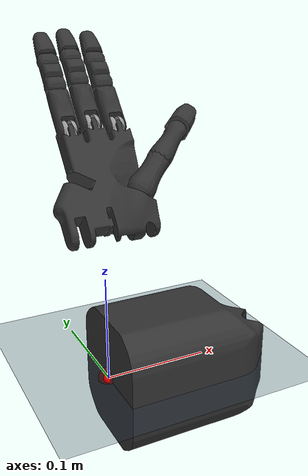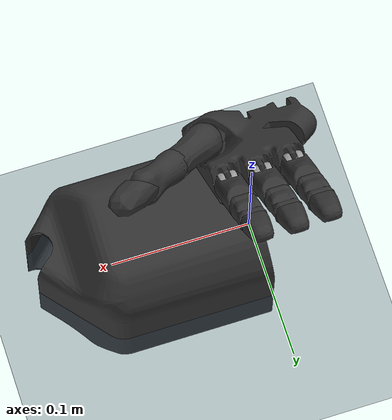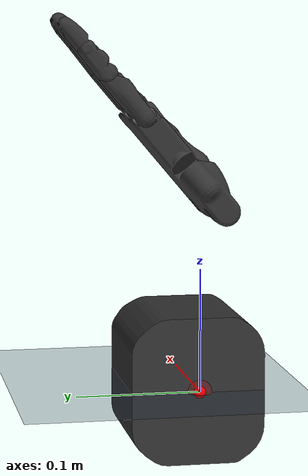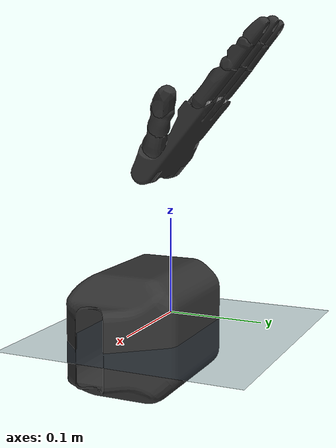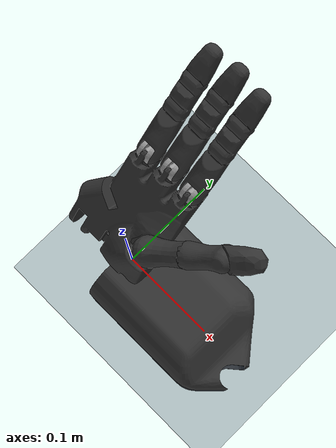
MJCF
<?xml version="1.0" encoding="utf-8"?>
<mujoco>
    <compiler angle="radian" coordinate="local" meshdir="../stls/hand" texturedir="../textures"></compiler>
    <option timestep="0.002" iterations="20" apirate="200">
        <flag warmstart="enable"></flag>
    </option>

    <include file="shared.xml"></include>

    <asset>
        <include file="shared_asset.xml"></include>
    </asset>

    <worldbody>
      <geom condim="3" material="mat_plane" name="floor" pos="0 0 0" size="5 5 0.001" type="plane" />
        <body name="floor0" pos="0 0 0">
            <site name="target0" pos="0 0 0" size="0.005" rgba="1 0 0 1" type="sphere"></site>
            <site name="target1" pos="0 0 0" size="0.005" rgba="0 1 0 1" type="sphere"></site>
            <site name="target2" pos="0 0 0" size="0.005" rgba="0 0 1 1" type="sphere"></site>
            <site name="target3" pos="0 0 0" size="0.005" rgba="1 1 0 1" type="sphere"></site>
            <site name="target4" pos="0 0 0" size="0.005" rgba="1 0 1 1" type="sphere"></site>

            <site name="finger0" pos="0 0 0" size="0.01" rgba="1 0 0 0.2" type="sphere"></site>
            <site name="finger1" pos="0 0 0" size="0.01" rgba="0 1 0 0.2" type="sphere"></site>
            <site name="finger2" pos="0 0 0" size="0.01" rgba="0 0 1 0.2" type="sphere"></site>
            <site name="finger3" pos="0 0 0" size="0.01" rgba="1 1 0 0.2" type="sphere"></site>
            <site name="finger4" pos="0 0 0" size="0.01" rgba="1 0 1 0.2" type="sphere"></site>
        </body>

        <include file="robot.xml"></include>

        <light directional="true" ambient="0.2 0.2 0.2" diffuse="0.8 0.8 0.8" specular="0.3 0.3 0.3" castshadow="false" pos="0 0 4" dir="0 0 -1" name="light0"></light>
    </worldbody>
</mujoco>

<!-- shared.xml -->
<!-- See LICENSE.md for legal notices. LICENSE.md must be kept together with this file. -->
<mujoco>
    <size njmax="500" nconmax="100" nuser_jnt="1" nuser_site="1" nuser_tendon="1" nuser_sensor="1" nuser_actuator="16" nstack="600000"></size>

    <visual>
        <map fogstart="3" fogend="5" force="0.1"></map>
        <quality shadowsize="4096"></quality>
    </visual>

    <default>
        <default class="robot0:asset_class">
            <geom   friction="1 0.005 0.001" condim="3" margin="0.0005" contype="1" conaffinity="1"></geom>
            <joint limited="true" damping="0.1" armature="0.001" margin="0.01" frictionloss="0.001"></joint>

            <site size="0.005" rgba="0.4 0.9 0.4 1"></site>
            <general ctrllimited="true" forcelimited="true"></general>
        </default>
        <default class="robot0:D_Touch">
            <site type="box" size="0.009 0.004 0.013" pos="0 -0.004 0.018" rgba="0.8 0.8 0.8 0.15" group="4"></site>
        </default>
        <default class="robot0:DC_Hand">
            <geom material="robot0:MatColl" contype="1" conaffinity="0" group="4"></geom>
        </default>
        <default class="robot0:D_Vizual">
            <geom material="plastic" contype="0" conaffinity="0" group="1" type="mesh"></geom>
        </default>
        <default class="robot0:free">
            <joint type="free" damping="0" armature="0" limited="false"></joint>
        </default>
    </default>

    <contact>
        <pair geom1="robot0:C_ffdistal" geom2="robot0:C_thdistal" condim="1"></pair>
        <pair geom1="robot0:C_ffmiddle" geom2="robot0:C_thdistal" condim="1"></pair>
        <pair geom1="robot0:C_ffproximal" geom2="robot0:C_thdistal" condim="1"></pair>
        <pair geom1="robot0:C_mfproximal" geom2="robot0:C_thdistal" condim="1"></pair>
        <pair geom1="robot0:C_mfdistal" geom2="robot0:C_thdistal" condim="1"></pair>
        <pair geom1="robot0:C_rfdistal" geom2="robot0:C_thdistal" condim="1"></pair>

        <pair geom1="robot0:C_mfdistal" geom2="robot0:C_ffdistal" condim="1"></pair>
        <pair geom1="robot0:C_rfdistal" geom2="robot0:C_mfdistal" condim="1"></pair>

        <pair geom1="robot0:C_mfproximal" geom2="robot0:C_ffproximal" condim="1"></pair>
        <pair geom1="robot0:C_rfproximal" geom2="robot0:C_mfproximal" condim="1"></pair>
    </contact>

    <tendon>

        <fixed name="robot0:T_FFJ3r" limited="true" range="-0.018 0.018" user="1204">
            <joint joint="robot0:FFJ3" coef="0.01"></joint>
        </fixed>
        <fixed name="robot0:T_FFJ3l" limited="true" range="-0.018 0.018" user="1205">
            <joint joint="robot0:FFJ3" coef="-0.01"></joint>
        </fixed>
        <fixed name="robot0:T_FFJ2u" limited="true" range="-0.007 0.03" user="1202">
            <joint joint="robot0:FFJ2" coef="0.01"></joint>
        </fixed>
        <fixed name="robot0:T_FFJ2d" limited="true" range="-0.03 0.007" user="1203">
            <joint joint="robot0:FFJ2" coef="-0.01"></joint>
        </fixed>
        <fixed name="robot0:T_FFJ1c" limited="true" range="-0.001 0.001">
            <joint joint="robot0:FFJ0" coef="0.00705"></joint>
            <joint joint="robot0:FFJ1" coef="-0.00805"></joint>
        </fixed>
        <fixed name="robot0:T_FFJ1u" limited="true" range="-0.007 0.03" user="1200">
            <joint joint="robot0:FFJ0" coef="0.00705"></joint>
            <joint joint="robot0:FFJ1" coef="0.00805"></joint>
        </fixed>
        <fixed name="robot0:T_FFJ1d" limited="true" range="-0.03 0.007" user="1201">
            <joint joint="robot0:FFJ0" coef="-0.00705"></joint>
            <joint joint="robot0:FFJ1" coef="-0.00805"></joint>
        </fixed>
        <fixed name="robot0:T_MFJ3r" limited="true" range="-0.018 0.018" user="1210">
            <joint joint="robot0:MFJ3" coef="0.01"></joint>
        </fixed>
        <fixed name="robot0:T_MFJ3l" limited="true" range="-0.018 0.018" user="1211">
            <joint joint="robot0:MFJ3" coef="-0.01"></joint>
        </fixed>
        <fixed name="robot0:T_MFJ2u" limited="true" range="-0.007 0.03" user="1208">
            <joint joint="robot0:MFJ2" coef="0.01"></joint>
        </fixed>
        <fixed name="robot0:T_MFJ2d" limited="true" range="-0.03 0.007" user="1209">
            <joint joint="robot0:MFJ2" coef="-0.01"></joint>
        </fixed>
        <fixed name="robot0:T_MFJ1c" limited="true" range="-0.001 0.001">
            <joint joint="robot0:MFJ0" coef="0.00705"></joint>
            <joint joint="robot0:MFJ1" coef="-0.00805"></joint>
        </fixed>
        <fixed name="robot0:T_MFJ1u" limited="true" range="-0.007 0.03" user="1206">
            <joint joint="robot0:MFJ0" coef="0.00705"></joint>
            <joint joint="robot0:MFJ1" coef="0.00805"></joint>
        </fixed>
        <fixed name="robot0:T_MFJ1d" limited="true" range="-0.03 0.007" user="1207">
            <joint joint="robot0:MFJ0" coef="-0.00705"></joint>
            <joint joint="robot0:MFJ1" coef="-0.00805"></joint>
        </fixed>
        <fixed name="robot0:T_RFJ3r" limited="true" range="-0.018 0.018" user="1216">
            <joint joint="robot0:RFJ3" coef="0.01"></joint>
        </fixed>
        <fixed name="robot0:T_RFJ3l" limited="true" range="-0.018 0.018" user="1217">
            <joint joint="robot0:RFJ3" coef="-0.01"></joint>
        </fixed>
        <fixed name="robot0:T_RFJ2u" limited="true" range="-0.007 0.03" user="1214">
            <joint joint="robot0:RFJ2" coef="0.01"></joint>
        </fixed>
        <fixed name="robot0:T_RFJ2d" limited="true" range="-0.03 0.007" user="1215">
            <joint joint="robot0:RFJ2" coef="-0.01"></joint>
        </fixed>
        <fixed name="robot0:T_RFJ1c" limited="true" range="-0.001 0.001">
            <joint joint="robot0:RFJ0" coef="0.00705"></joint>
            <joint joint="robot0:RFJ1" coef="-0.00805"></joint>
        </fixed>
        <fixed name="robot0:T_RFJ1u" limited="true" range="-0.007 0.03" user="1212">
            <joint joint="robot0:RFJ0" coef="0.00705"></joint>
            <joint joint="robot0:RFJ1" coef="0.00805"></joint>
        </fixed>
        <fixed name="robot0:T_RFJ1d" limited="true" range="-0.03 0.007" user="1213">
            <joint joint="robot0:RFJ0" coef="-0.00705"></joint>
            <joint joint="robot0:RFJ1" coef="-0.00805"></joint>
        </fixed>

        <fixed name="robot0:T_THJ4a" limited="true" range="-0.018 0.018" user="1234">
            <joint joint="robot0:THJ4" coef="0.01636"></joint>
        </fixed>
        <fixed name="robot0:T_THJ4c" limited="true" range="-0.018 0.018" user="1235">
            <joint joint="robot0:THJ4" coef="-0.01636"></joint>
        </fixed>
        <fixed name="robot0:T_THJ2u" limited="true" range="-0.018 0.018" user="1230">
            <joint joint="robot0:THJ2" coef="0.011"></joint>
        </fixed>
        <fixed name="robot0:T_THJ2d" limited="true" range="-0.018 0.018" user="1231">
            <joint joint="robot0:THJ2" coef="-0.011"></joint>
        </fixed>
        <fixed name="robot0:T_THJ1r" limited="true" range="-0.018 0.018" user="1228">
            <joint joint="robot0:THJ1" coef="0.011"></joint>
        </fixed>
        <fixed name="robot0:T_THJ1l" limited="true" range="-0.018 0.018" user="1229">
            <joint joint="robot0:THJ1" coef="-0.011"></joint>
        </fixed>
        <fixed name="robot0:T_THJ0r" limited="true" range="-0.03 0.007" user="1226">
            <joint joint="robot0:THJ0" coef="0.009"></joint>
        </fixed>
        <fixed name="robot0:T_THJ0l" limited="true" range="-0.007 0.03" user="1227">
            <joint joint="robot0:THJ0" coef="-0.009"></joint>
        </fixed>
    </tendon>

    <sensor>

        <jointpos name="robot0:Sjp_FFJ3" joint="robot0:FFJ3"></jointpos>
        <jointpos name="robot0:Sjp_FFJ2" joint="robot0:FFJ2"></jointpos>
        <jointpos name="robot0:Sjp_FFJ1" joint="robot0:FFJ1"></jointpos>
        <jointpos name="robot0:Sjp_FFJ0" joint="robot0:FFJ0"></jointpos>
        <jointpos name="robot0:Sjp_MFJ3" joint="robot0:MFJ3"></jointpos>
        <jointpos name="robot0:Sjp_MFJ2" joint="robot0:MFJ2"></jointpos>
        <jointpos name="robot0:Sjp_MFJ1" joint="robot0:MFJ1"></jointpos>
        <jointpos name="robot0:Sjp_MFJ0" joint="robot0:MFJ0"></jointpos>
        <jointpos name="robot0:Sjp_RFJ3" joint="robot0:RFJ3"></jointpos>
        <jointpos name="robot0:Sjp_RFJ2" joint="robot0:RFJ2"></jointpos>
        <jointpos name="robot0:Sjp_RFJ1" joint="robot0:RFJ1"></jointpos>
        <jointpos name="robot0:Sjp_RFJ0" joint="robot0:RFJ0"></jointpos>

        <jointpos name="robot0:Sjp_THJ4" joint="robot0:THJ4"></jointpos>
        <jointpos name="robot0:Sjp_THJ2" joint="robot0:THJ2"></jointpos>
        <jointpos name="robot0:Sjp_THJ1" joint="robot0:THJ1"></jointpos>
        <jointpos name="robot0:Sjp_THJ0" joint="robot0:THJ0"></jointpos>
        <touch name="robot0:ST_Tch_fftip" site="robot0:Tch_fftip"></touch>
        <touch name="robot0:ST_Tch_mftip" site="robot0:Tch_mftip"></touch>
        <touch name="robot0:ST_Tch_rftip" site="robot0:Tch_rftip"></touch>

    </sensor>

    <actuator>

        <position name="robot0:A_FFJ3" class="robot0:asset_class" user="2004" joint="robot0:FFJ3" ctrlrange="-0.349 0.349" kp="1" forcerange="-0.9 0.9"></position>
        <position name="robot0:A_FFJ2" class="robot0:asset_class" user="2002" joint="robot0:FFJ2" ctrlrange="0 1.571" kp="1" forcerange="-0.9 0.9"></position>
        <position name="robot0:A_FFJ1" class="robot0:asset_class" user="2000" joint="robot0:FFJ1" ctrlrange="0 1.571" kp="1" forcerange="-0.7245 0.7245"></position>
        <position name="robot0:A_MFJ3" class="robot0:asset_class" user="2010" joint="robot0:MFJ3" ctrlrange="-0.349 0.349" kp="1" forcerange="-0.9 0.9"></position>
        <position name="robot0:A_MFJ2" class="robot0:asset_class" user="2008" joint="robot0:MFJ2" ctrlrange="0 1.571" kp="1" forcerange="-0.9 0.9"></position>
        <position name="robot0:A_MFJ1" class="robot0:asset_class" user="2006" joint="robot0:MFJ1" ctrlrange="0 1.571" kp="1" forcerange="-0.7245 0.7245"></position>
        <position name="robot0:A_RFJ3" class="robot0:asset_class" user="2016" joint="robot0:RFJ3" ctrlrange="-0.349 0.349" kp="1" forcerange="-0.9 0.9"></position>
        <position name="robot0:A_RFJ2" class="robot0:asset_class" user="2014" joint="robot0:RFJ2" ctrlrange="0 1.571" kp="1" forcerange="-0.9 0.9"></position>
        <position name="robot0:A_RFJ1" class="robot0:asset_class" user="2012" joint="robot0:RFJ1" ctrlrange="0 1.571" kp="1" forcerange="-0.7245 0.7245"></position>

        <position name="robot0:A_THJ4" class="robot0:asset_class" user="2034" joint="robot0:THJ4" ctrlrange="-1.047 1.047" kp="1" forcerange="-2.3722 2.3722"></position>
        <position name="robot0:A_THJ2" class="robot0:asset_class" user="2030" joint="robot0:THJ2" ctrlrange="-0.209 0.209" kp="1" forcerange="-0.99 0.99"></position>
        <position name="robot0:A_THJ1" class="robot0:asset_class" user="2028" joint="robot0:THJ1" ctrlrange="-0.524 0.524" kp="1" forcerange="-0.99 0.99"></position>
        <position name="robot0:A_THJ0" class="robot0:asset_class" user="2026" joint="robot0:THJ0" ctrlrange="-1.571 0" kp="1" forcerange="-0.81 0.81"></position>
    </actuator>
</mujoco>

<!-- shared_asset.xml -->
<!-- See LICENSE.md for legal notices. LICENSE.md must be kept together with this file. -->
<mujoco>
    <texture type="skybox" builtin="gradient" width="128" height="128" rgb1=".4 .6 .8" rgb2="0 0 0"/>
    <texture name="robot0:texplane" type="2d" builtin="checker" rgb1="0.2 0.3 0.4" rgb2="0.1 0.15 0.2" width="512" height="512"></texture>

    <texture name="robot0:texgeom" type="cube" builtin="flat" mark="cross" width="127" height="127" rgb1="0.8 0.6 0.4" rgb2="0.8 0.6 0.4" markrgb="1 1 1" random="0.01"/>
    <texture name="texplane" type="2d" builtin="checker" rgb1=".2 .3 .4" rgb2=".1 0.15 0.2" width="512" height="512"/>

    <material name="robot0:MatGnd" reflectance="0.5" texture="robot0:texplane" texrepeat="1 1" texuniform="true"></material>
    <material name="robot0:MatColl" specular="1" shininess="0.3" reflectance="0.5" rgba="0.4 0.5 0.6 1"></material>
    <material name="robot0:MatViz" specular="0.75" shininess="0.1" reflectance="0.5" rgba="0.93 0.93 0.93 1"></material>
    <material name="robot0:object" texture="robot0:texgeom" texuniform="false"></material>
    <material name="floor_mat" specular="0" shininess="0.5" reflectance="0" rgba="0.2 0.2 0.2 0"></material>
    <material name='mat_plane' reflectance='0.3' texture="texplane" texrepeat="1 1" texuniform="true"/>

    <material name="metal" reflectance="1.0" rgba="0.6 0.6 0.6 1.0" shininess="0.5" specular="1.0"/>
    <material name="plastic" rgba="0.2 0.2 0.2 1.0" shininess="0.5"/>
    <material name="rubber" rgba="0.3 0.3 0.3 1.0" shininess="0.0"/>

    <mesh name="robot0:forearm_lite" file="forearm_lite.stl"></mesh>
    <mesh name="robot0:forearm_cvx" file="forearm_electric_cvx.stl"></mesh>
    <mesh name="robot0:wrist" scale="0.001 0.001 0.001" file="wrist.stl"></mesh>
    <mesh name="robot0:palm" scale="0.001 0.001 0.001" file="palm.stl"></mesh>
    <mesh name="robot0:knuckle" scale="0.001 0.001 0.001" file="knuckle.stl"></mesh>
    <mesh name="robot0:F3" scale="0.001 0.001 0.001" file="F3.stl"></mesh>
    <mesh name="robot0:F2" scale="0.001 0.001 0.001" file="F2.stl"></mesh>
    <mesh name="robot0:F1" scale="0.001 0.001 0.001" file="F1.stl"></mesh>
    <mesh name="robot0:lfmetacarpal" scale="0.001 0.001 0.001" file="lfmetacarpal.stl"></mesh>
    <mesh name="robot0:TH3_z" scale="0.001 0.001 0.001" file="TH3_z.stl"></mesh>
    <mesh name="robot0:TH2_z" scale="0.001 0.001 0.001" file="TH2_z.stl"></mesh>
    <mesh name="robot0:TH1_z" scale="0.001 0.001 0.001" file="TH1_z.stl"></mesh>
</mujoco>

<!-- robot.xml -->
<!-- See LICENSE.md for legal notices. LICENSE.md must be kept together with this file. -->
<mujoco>
    <body name="robot0:hand_mount" pos="0 0 0" euler="0 1.57 0">
        <inertial mass="0.1" pos="0 0 0" diaginertia="0.001 0.001 0.001"></inertial>
        <body childclass="robot0:asset_class" name="robot0:forearm_lite" pos="0 0.0 0" euler="0 0 0">
            <inertial pos="0.001 -0.002 0.29" quat="0.982 -0.016 0 -0.188" mass="4" diaginertia="0.01 0.01 0.0075"></inertial>
            <geom class="robot0:D_Vizual" pos="0 0.0 0.0" name="robot0:V_forearm_lite" mesh="robot0:forearm_lite" euler="0 0 1.57"></geom>
            <body name="robot0:wrist" pos="0 0 0">
                <inertial pos="0.003 0 0.016" quat="0.504 0.496 0.495 0.504" mass="0.3" diaginertia="0.001 0.001 0.001"></inertial>
                <body name="robot0:palm" pos="-0.15 -0.014 0" euler="0 -1.57 0.0">
                    <inertial pos="0.006 0 0.036" quat="0.716 0.044 0.075 0.693" mass="0.3" diaginertia="0.001 0.001 0.001"></inertial>
                    <body name="WR1_angle" euler="-0.69778 0 0">
                    <geom class="robot0:D_Vizual" name="robot0:V_palm" mesh="robot0:palm"></geom>
                    <body name="robot0:ffknuckle" pos="0.033 0 0.095">
                        <inertial pos="0 0 0" quat="0.52 0.854 0.006 -0.003" mass="0.008" diaginertia="1e-05 1e-05 1e-05"></inertial>
                        <joint name="robot0:FFJ3" type="hinge" pos="0 0 0" axis="0 1 0" range="-0.349 0.349" user="1103"></joint>
                        <geom class="robot0:D_Vizual" material="metal" name="robot0:V_ffknuckle" mesh="robot0:knuckle"></geom>
                        <body name="robot0:ffproximal" pos="0 0 0">
                            <inertial pos="0 0 0.023" quat="0.707 -0.004 0.004 0.707" mass="0.014" diaginertia="1e-05 1e-05 1e-05"></inertial>
                            <joint name="robot0:FFJ2" type="hinge" pos="0 0 0" axis="1 0 0" range="0 1.571" user="1102"></joint>
                            <geom class="robot0:D_Vizual" name="robot0:V_ffproximal" mesh="robot0:F3"></geom>
                            <geom class="robot0:DC_Hand" name="robot0:C_ffproximal" type="capsule" pos="0 0 0.0225" size="0.01 0.0225"></geom>
                            <body name="robot0:ffmiddle" pos="0 0 0.045">
                                <inertial pos="0 0 0.011" quat="0.707 0 0 0.707" mass="0.012" diaginertia="1e-05 1e-05 1e-05"></inertial>
                                <joint name="robot0:FFJ1" type="hinge" pos="0 0 0" axis="1 0 0" range="0 1.571" user="1101"></joint>
                                <geom class="robot0:D_Vizual" name="robot0:V_ffmiddle" mesh="robot0:F2"></geom>
                                <geom class="robot0:DC_Hand" name="robot0:C_ffmiddle" type="capsule" pos="0 0 0.0125" size="0.00805 0.0125"></geom>
                                <body name="robot0:ffdistal" pos="0 0 0.025">
                                    <inertial pos="0 0 0.015" quat="0.707 -0.003 0.003 0.707" mass="0.01" diaginertia="1e-05 1e-05 1e-05"></inertial>
                                    <joint name="robot0:FFJ0" type="hinge" pos="0 0 0" axis="1 0 0" range="0 1.571" user="1100"></joint>
                                    <geom class="robot0:D_Vizual" name="robot0:V_ffdistal" pos="0 0 0.001" mesh="robot0:F1"></geom>
                                    <geom class="robot0:DC_Hand" name="robot0:C_ffdistal" type="capsule" pos="0 0 0.012" size="0.00705 0.012" condim="4"></geom>
                                    <site name="robot0:S_fftip" pos="0 0 0.026" group="3"></site>
                                    <site class="robot0:D_Touch" name="robot0:Tch_fftip"></site>
                                </body>
                            </body>
                        </body>
                    </body>
                    <body name="robot0:mfknuckle" pos="0.011 0 0.099">
                        <inertial pos="0 0 0" quat="0.52 0.854 0.006 -0.003" mass="0.008" diaginertia="1e-05 1e-05 1e-05"></inertial>
                        <joint name="robot0:MFJ3" type="hinge" pos="0 0 0" axis="0 1 0" range="-0.349 0.349" user="1107"></joint>
                        <geom class="robot0:D_Vizual" material="metal" name="robot0:V_mfknuckle" mesh="robot0:knuckle"></geom>
                        <body name="robot0:mfproximal" pos="0 0 0">
                            <inertial pos="0 0 0.023" quat="0.707 -0.004 0.004 0.707" mass="0.014" diaginertia="1e-05 1e-05 1e-05"></inertial>
                            <joint name="robot0:MFJ2" type="hinge" pos="0 0 0" axis="1 0 0" range="0 1.571" user="1106"></joint>
                            <geom class="robot0:D_Vizual" name="robot0:V_mfproximal" mesh="robot0:F3"></geom>
                            <geom class="robot0:DC_Hand" name="robot0:C_mfproximal" type="capsule" pos="0 0 0.0225" size="0.01 0.0225"></geom>
                            <body name="robot0:mfmiddle" pos="0 0 0.045">
                                <inertial pos="0 0 0.012" quat="0.707 0 0 0.707" mass="0.012" diaginertia="1e-05 1e-05 1e-05"></inertial>
                                <joint name="robot0:MFJ1" type="hinge" pos="0 0 0" axis="1 0 0" range="0 1.571" user="1105"></joint>
                                <geom class="robot0:D_Vizual" name="robot0:V_mfmiddle" mesh="robot0:F2"></geom>
                                <geom class="robot0:DC_Hand" name="robot0:C_mfmiddle" type="capsule" pos="0 0 0.0125" size="0.00805 0.0125"></geom>
                                <body name="robot0:mfdistal" pos="0 0 0.025">
                                    <inertial pos="0 0 0.015" quat="0.707 -0.003 0.003 0.707" mass="0.01" diaginertia="1e-05 1e-05 1e-05"></inertial>
                                    <joint name="robot0:MFJ0" type="hinge" pos="0 0 0" axis="1 0 0" range="0 1.571" user="1104"></joint>
                                    <geom class="robot0:D_Vizual" name="robot0:V_mfdistal" mesh="robot0:F1"></geom>
                                    <geom class="robot0:DC_Hand" name="robot0:C_mfdistal" type="capsule" pos="0 0 0.012" size="0.00705 0.012" condim="4"></geom>
                                    <site name="robot0:S_mftip" pos="0 0 0.026" group="3"></site>
                                    <site class="robot0:D_Touch" name="robot0:Tch_mftip"></site>
                                </body>
                            </body>
                        </body>
                    </body>
                    <body name="robot0:rfknuckle" pos="-0.011 0 0.095">
                        <inertial pos="0 0 0" quat="0.52 0.854 0.006 -0.003" mass="0.008" diaginertia="1e-05 1e-05 1e-05"></inertial>
                        <joint name="robot0:RFJ3" type="hinge" pos="0 0 0" axis="0 1 0" range="-0.349 0.349" user="1111"></joint>
                        <geom class="robot0:D_Vizual" material="metal" name="robot0:V_rfknuckle" mesh="robot0:knuckle"></geom>
                        <body name="robot0:rfproximal" pos="0 0 0">
                            <inertial pos="0 0 0.023" quat="0.707 -0.004 0.004 0.707" mass="0.014" diaginertia="1e-05 1e-05 1e-05"></inertial>
                            <joint name="robot0:RFJ2" type="hinge" pos="0 0 0" axis="1 0 0" range="0 1.571" user="1110"></joint>
                            <geom class="robot0:D_Vizual" name="robot0:V_rfproximal" mesh="robot0:F3"></geom>
                            <geom class="robot0:DC_Hand" name="robot0:C_rfproximal" type="capsule" pos="0 0 0.0225" size="0.01 0.0225"></geom>
                            <body name="robot0:rfmiddle" pos="0 0 0.045">
                                <inertial pos="0 0 0.012" quat="0.707 0 0 0.707" mass="0.012" diaginertia="1e-05 1e-05 1e-05"></inertial>
                                <joint name="robot0:RFJ1" type="hinge" pos="0 0 0" axis="1 0 0" range="0 1.571" user="1109"></joint>
                                <geom class="robot0:D_Vizual" name="robot0:V_rfmiddle" mesh="robot0:F2"></geom>
                                <geom class="robot0:DC_Hand" name="robot0:C_rfmiddle" type="capsule" pos="0 0 0.0125" size="0.00805 0.0125"></geom>
                                <body name="robot0:rfdistal" pos="0 0 0.025">
                                    <inertial pos="0 0 0.015" quat="0.707 -0.003 0.003 0.707" mass="0.01" diaginertia="1e-05 1e-05 1e-05"></inertial>
                                    <joint name="robot0:RFJ0" type="hinge" pos="0 0 0" axis="1 0 0" range="0 1.571" user="1108"></joint>
                                    <geom class="robot0:D_Vizual" name="robot0:V_rfdistal" mesh="robot0:F1" pos="0 0 0.001"></geom>
                                    <geom class="robot0:DC_Hand" name="robot0:C_rfdistal" type="capsule" pos="0 0 0.012" size="0.00705 0.012" condim="4"></geom>
                                    <site name="robot0:S_rftip" pos="0 0 0.026" group="3"></site>
                                    <site class="robot0:D_Touch" name="robot0:Tch_rftip"></site>
                                </body>
                            </body>
                        </body>
                    </body>

                    <body name="robot0:thbase" pos="0.034 -0.009 0.029" axisangle="0 1 0 0.785">
                        <inertial pos="0 0 0" mass="0.01" diaginertia="1e-05 1e-05 1e-05"></inertial>
                        <joint name="robot0:THJ4" type="hinge" pos="0 0 0" axis="0 0 -1" range="-1.047 1.047" user="1121"></joint>
                        <geom name="robot0:V_thbase" type="box" group="1" pos="0 0 0" size="0.001 0.001 0.001"></geom>
                        <body name="robot0:thproximal" pos="0 0 0">
                            <inertial pos="0 0 0.017" quat="0.982 0 0.001 0.191" mass="0.016" diaginertia="1e-05 1e-05 1e-05"></inertial>
                            <geom class="robot0:D_Vizual" name="robot0:V_thproximal" mesh="robot0:TH3_z"></geom>
                            <geom class="robot0:DC_Hand" name="robot0:C_thproximal" type="capsule" pos="0 0 0.019" size="0.013 0.019"></geom>
                            <body name="robot0:thhub" pos="0 0 0.038">
                                <inertial pos="0 0 0" mass="0.002" diaginertia="1e-05 1e-05 1e-05"></inertial>
                                <joint name="robot0:THJ2" type="hinge" pos="0 0 0" axis="1 0 0" range="-0.209 0.209" user="1119"></joint>
                                <geom name="robot0:V_thhub" type="box" group="1" pos="0 0 0" size="0.001 0.001 0.001"></geom>
                                <body name="robot0:thmiddle" pos="0 0 0">
                                    <inertial pos="0 0 0.016" quat="1 -0.001 -0.007 0.003" mass="0.016" diaginertia="1e-05 1e-05 1e-05"></inertial>
                                    <joint name="robot0:THJ1" type="hinge" pos="0 0 0" axis="0 1 0" range="-0.524 0.524" user="1118"></joint>
                                    <geom class="robot0:D_Vizual" name="robot0:V_thmiddle" mesh="robot0:TH2_z"></geom>
                                    <geom class="robot0:DC_Hand" name="robot0:C_thmiddle" type="capsule" pos="0 0 0.016" size="0.011 0.016"></geom>
                                    <body name="robot0:thdistal" pos="0 0 0.032">
                                        <inertial pos="0 0 0.016" quat="0.999 -0.005 -0.047 0.005" mass="0.016" diaginertia="1e-05 1e-05 1e-05"></inertial>
                                        <joint name="robot0:THJ0" type="hinge" pos="0 0 0" axis="0 1 0" range="-1.571 0" user="1117"></joint>
                                        <geom class="robot0:D_Vizual" name="robot0:V_thdistal" mesh="robot0:TH1_z"></geom>
                                        <geom class="robot0:DC_Hand" name="robot0:C_thdistal" type="capsule" pos="0 0 0.013" size="0.00918 0.013" condim="4"></geom>
                                        <site name="robot0:S_thtip" pos="0 0 0.0275" group="3"></site>
                                        <site class="robot0:D_Touch" name="robot0:Tch_thtip" size="0.005 0.011 0.016" pos="-0.005 0 0.02"></site>
                                    </body>
                                </body>
                            </body>
                        </body>
                    </body>
                  </body>
                </body>
            </body>
        </body>
    </body>
</mujoco>
